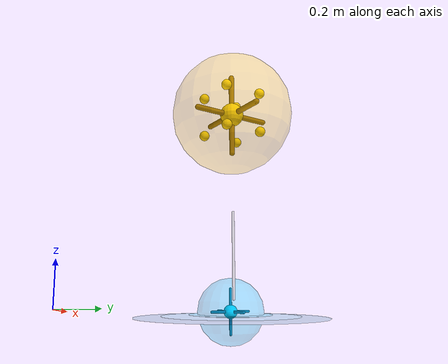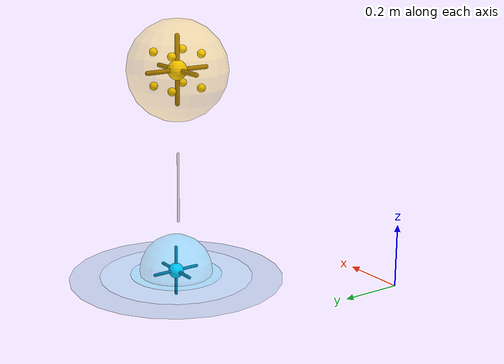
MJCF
<mujoco model="obstacles">
   <asset>
      <!-- Water collection marker materials -->
      <material name="water_marker_center" rgba="0.0 0.8 1.0 1.0"/>      <!-- Cyan for water level -->
      <material name="water_marker_ring" rgba="0.0 0.6 0.8 0.8"/>
      <material name="water_marker_cross" rgba="0.0 0.4 0.6 1.0"/>
      <material name="water_marker_glow" rgba="0.0 0.8 1.0 0.3"/>

      <!-- Lift marker materials -->
      <material name="lift_marker_center" rgba="1.0 0.8 0.0 1.0"/>        <!-- Gold for lift position -->
      <material name="lift_marker_ring" rgba="0.8 0.6 0.0 0.8"/>
      <material name="lift_marker_cross" rgba="0.6 0.4 0.0 1.0"/>
      <material name="lift_marker_glow" rgba="1.0 0.8 0.0 0.3"/>
   </asset>

   <worldbody>
      <body name="obstacles">
      </body>

      <!-- ===== WATER COLLECTION MARKER (Phase 1) ===== -->
      <body name="water_marker" pos="0.5 0.5 0.0">
         <!-- Center sphere - at water surface -->
         <geom name="water_center_sphere" type="sphere" size="0.025"
               material="water_marker_center" group="2" contype="0" conaffinity="0"/>

         <!-- Outer ring - floating on water surface -->
         <geom name="water_ring_outer" type="cylinder" size="0.06 0.003"
               material="water_marker_ring" group="2" contype="0" conaffinity="0"/>

         <!-- Cross bars - floating above water -->
         <geom name="water_cross_x" type="capsule"
               fromto="-0.08 0 0  0.08 0 0" size="0.005"
               material="water_marker_cross" group="2" contype="0" conaffinity="0"/>
         <geom name="water_cross_y" type="capsule"
               fromto="0 -0.08 0  0 0.08 0" size="0.005"
               material="water_marker_cross" group="2" contype="0" conaffinity="0"/>
         <geom name="water_cross_z" type="capsule"
               fromto="0 0 -0.08  0 0 0.08" size="0.005"
               material="water_marker_cross" group="2" contype="0" conaffinity="0"/>

         <!-- Glow effect - extends into water -->
         <geom name="water_glow" type="sphere" size="0.12"
               material="water_marker_glow" group="2" contype="0" conaffinity="0"/>

         <!-- Water ripple effects around floating target -->
         <geom name="water_ripple1" type="cylinder" size="0.15 0.001" pos="0 0 -0.01"
               rgba="0.0 0.8 1.0 0.3" group="2" contype="0" conaffinity="0"/>
         <geom name="water_ripple2" type="cylinder" size="0.25 0.001" pos="0 0 -0.015"
               rgba="0.0 0.6 0.8 0.2" group="2" contype="0" conaffinity="0"/>
         <geom name="water_ripple3" type="cylinder" size="0.35 0.001" pos="0 0 -0.02"
               rgba="0.0 0.4 0.6 0.1" group="2" contype="0" conaffinity="0"/>
      </body>

      <!-- ===== LIFT MARKER (Phase 2) ===== -->
      <body name="lift_marker" pos="0.8 0.3 0.6">
         <!-- Center sphere - much higher above water -->
         <geom name="lift_center_sphere" type="sphere" size="0.035"
               material="lift_marker_center" group="2" contype="0" conaffinity="0"/>

         <!-- Outer ring - lift position -->
         <geom name="lift_ring_outer" type="cylinder" size="0.08 0.005"
               material="lift_marker_ring" group="2" contype="0" conaffinity="0"/>

         <!-- Cross bars - lift position -->
         <geom name="lift_cross_x" type="capsule"
               fromto="-0.12 0 0  0.12 0 0" size="0.008"
               material="lift_marker_cross" group="2" contype="0" conaffinity="0"/>
         <geom name="lift_cross_y" type="capsule"
               fromto="0 -0.12 0  0 0.12 0" size="0.008"
               material="lift_marker_cross" group="2" contype="0" conaffinity="0"/>
         <geom name="lift_cross_z" type="capsule"
               fromto="0 0 -0.12  0 0 0.12" size="0.008"
               material="lift_marker_cross" group="2" contype="0" conaffinity="0"/>

         <!-- Glow effect - lift position -->
         <geom name="lift_glow" type="sphere" size="0.18"
               material="lift_marker_glow" group="2" contype="0" conaffinity="0"/>

         <!-- Corner markers for better visibility -->
         <geom name="lift_corner1" type="sphere" size="0.015" pos="0.06 0.06 0.06"
               material="lift_marker_center" group="2" contype="0" conaffinity="0"/>
         <geom name="lift_corner2" type="sphere" size="0.015" pos="-0.06 0.06 0.06"
               material="lift_marker_center" group="2" contype="0" conaffinity="0"/>
         <geom name="lift_corner3" type="sphere" size="0.015" pos="0.06 -0.06 0.06"
               material="lift_marker_center" group="2" contype="0" conaffinity="0"/>
         <geom name="lift_corner4" type="sphere" size="0.015" pos="-0.06 -0.06 0.06"
               material="lift_marker_center" group="2" contype="0" conaffinity="0"/>
         <geom name="lift_corner5" type="sphere" size="0.015" pos="0.06 0.06 -0.06"
               material="lift_marker_center" group="2" contype="0" conaffinity="0"/>
         <geom name="lift_corner6" type="sphere" size="0.015" pos="-0.06 0.06 -0.06"
               material="lift_marker_center" group="2" contype="0" conaffinity="0"/>
         <geom name="lift_corner7" type="sphere" size="0.015" pos="0.06 -0.06 -0.06"
               material="lift_marker_center" group="2" contype="0" conaffinity="0"/>
         <geom name="lift_corner8" type="sphere" size="0.015" pos="-0.06 -0.06 -0.06"
               material="lift_marker_center" group="2" contype="0" conaffinity="0"/>

         <!-- Longer connecting line between markers to show sequence -->
         <geom name="connection_line" type="capsule"
               fromto="0 0 -0.3  0 0 -0.55" size="0.004"
               rgba="0.8 0.8 0.8 0.6" group="2" contype="0" conaffinity="0"/>
      </body>

      <!-- ===== MISSION INDICATORS ===== -->
      <!-- Phase indicator text would go here if MuJoCo supported text -->

   </worldbody>
</mujoco>
